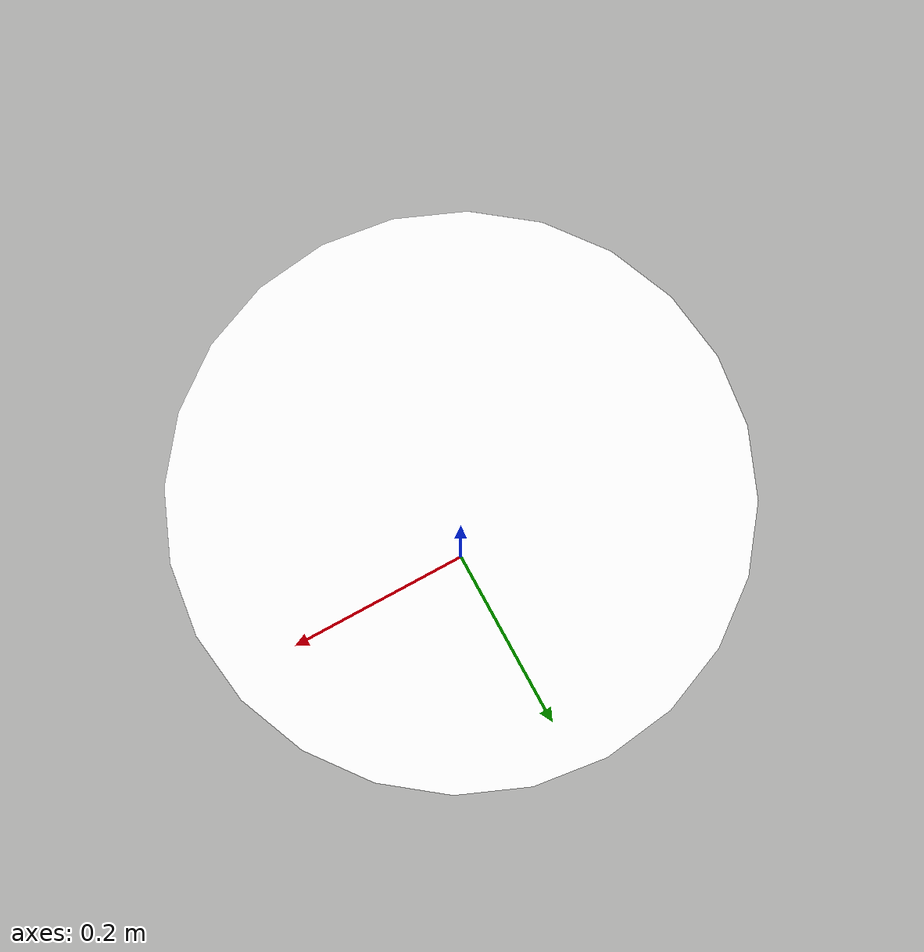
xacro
<?xml version="1.0" ?>

<robot
  xmlns:xacro="http://www.ros.org/wiki/xacro"
  name="kobuki"
  >

  <!-- ************************** Xacro ************************** -->

  <xacro:property name="bias" value="0.3" />
  <xacro:property name="wheel_radius" value="0.075" />
  <xacro:property name="pi" value="3.1415926535897931" />
  <xacro:property name="material_white">
    <material name="white">
      <color rgba="1 1 1 1"/>
    </material>
  </xacro:property>
  <xacro:property name="material_orange">
    <material name="orange">
      <color rgba="1.0 0.7 0.0 1"/>
    </material>
  </xacro:property>
  <xacro:property name="material_grey_blue">
    <material name="grey_blue">
      <color rgba="0.4 0.4 1.0 1"/>
    </material>
  </xacro:property>
  <xacro:property name="material_blue">
    <material name="blue">
      <color rgba="0.0 0.0 1.0 1"/>
    </material>
  </xacro:property>
  <xacro:property name="material_green">
    <material name="green">
      <color rgba="0 .8 0 1"/>
    </material>
  </xacro:property>
  <xacro:property name="material_black">
    <material name="black">
      <color rgba="0.1 0.1 0.1 1"/>
    </material>
  </xacro:property>
  <xacro:macro name="wheel" params="name length radius off_x off_y off_z type">
    <link name="${name}">
      <visual>
        <geometry>
          <cylinder length="${length}" radius="${radius}"/>
     	  </geometry>
        <origin rpy="0 ${pi/2} 0" xyz="0 0 0"/>
        <material name="black">
          <color rgba="0.1 0.1 0.1 1"/>
        </material>
      </visual>
    </link>
    <joint name="${name}" type="${type}">
      <parent link="base_link"/>
      <child link="${name}"/>
      <origin rpy="0 0 ${pi/2}" xyz="${off_x} ${off_y} ${off_z}"/>
    </joint>
  </xacro:macro>

  <!-- ************************** Base *************************** -->

  <link name="robot_base">
    <visual>
      <geometry>
        <cylinder length="0.358" radius="0.25"/>
   	  </geometry>
      <origin rpy="0 0 0" xyz="0 0 0.179"/>
      <xacro:insert_block name="material_white" />
    </visual>
  </link>

</robot>
